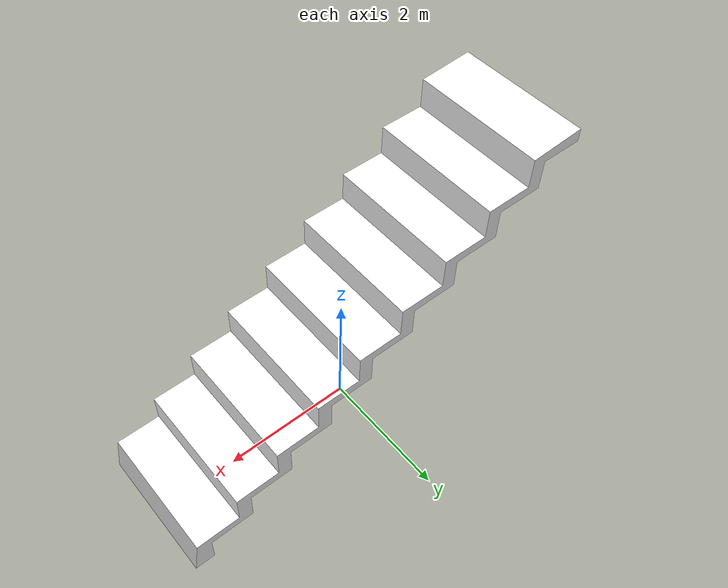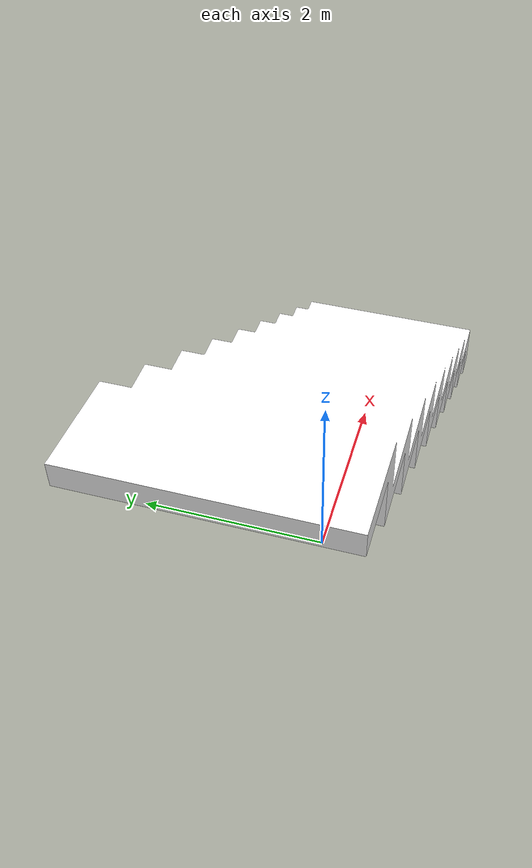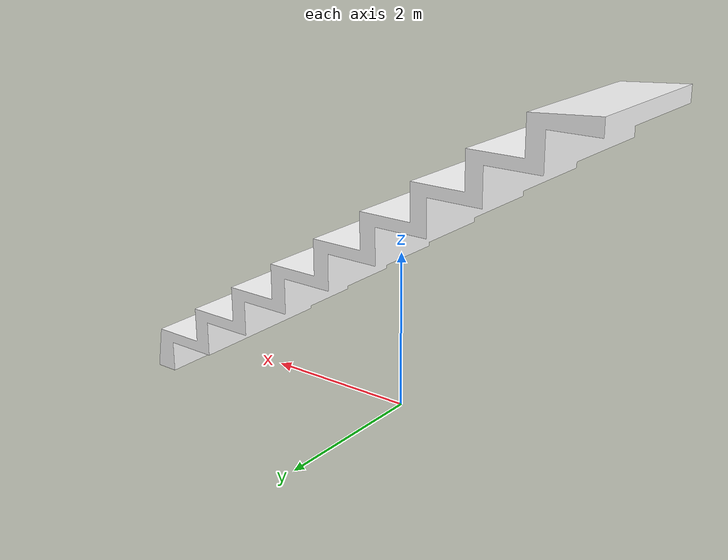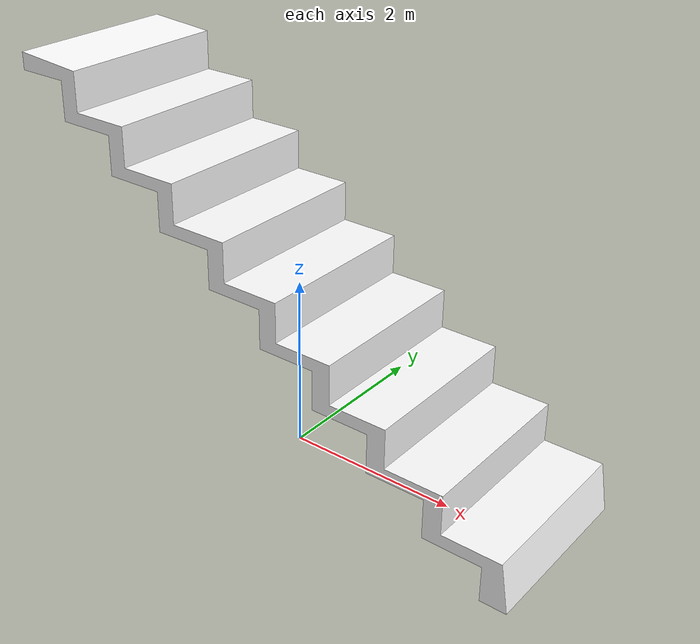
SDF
<?xml version="1.0"?>
<sdf version="1.11">
  <model name="stair">
    <link name="body">
      <inertial auto="true" />
      <collision name="collision">
        <density>10.0</density>
        <geometry>
          <mesh optimization="convex_decomposition">
            <uri>models://stair/mesh.stl</uri>
          </mesh>
        </geometry>
      </collision>
      <visual name="visual">
        <geometry>
          <mesh>
            <uri>models://stair/mesh.stl</uri>
          </mesh>
        </geometry>
          <material>
            <ambient>1 1 1 1</ambient>
            <diffuse>1 1 1 1</diffuse>
            <specular>0.2 0.2 0.2 1</specular>
          </material>
      </visual>
    </link>
  </model>
</sdf>
